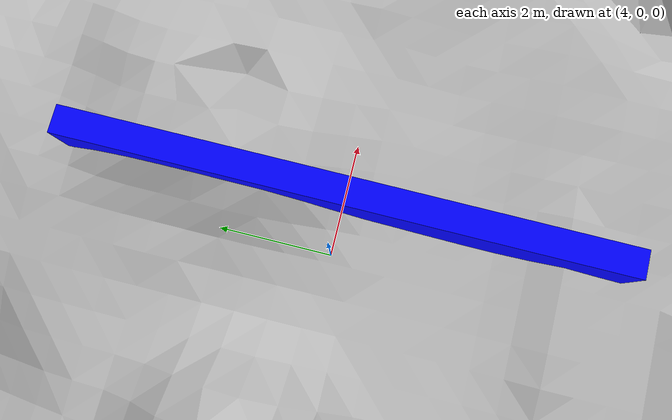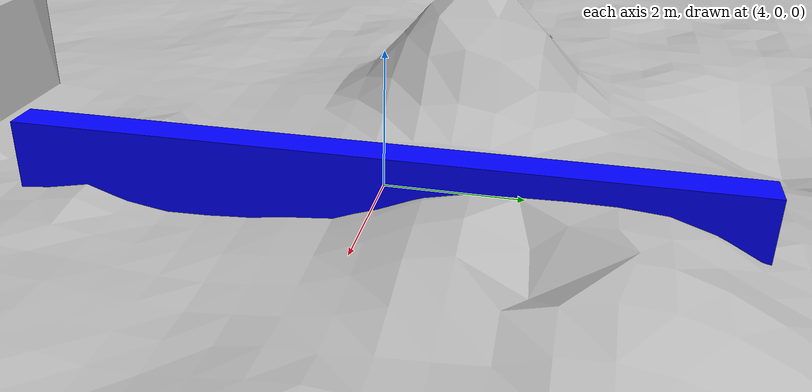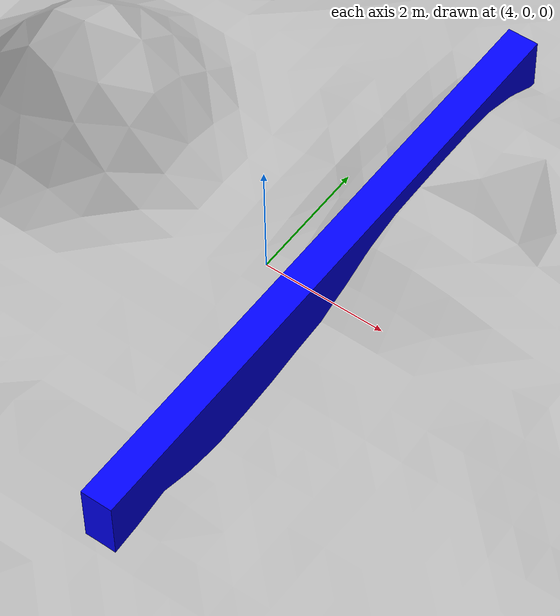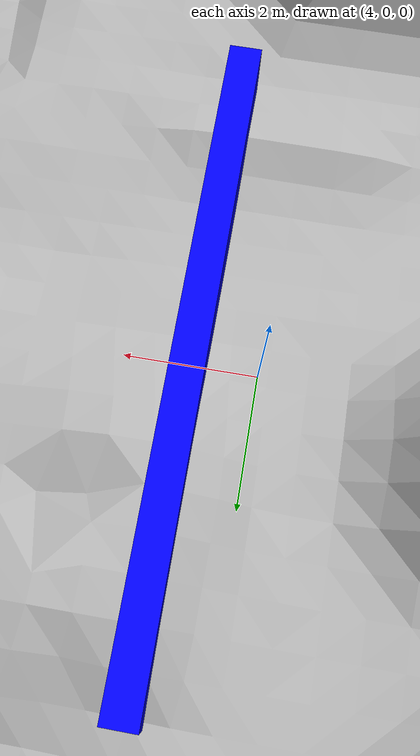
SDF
<sdf version="1.7">
  <world name="empty">
    <physics name="1ms" type="dart">
      <max_step_size>0.001</max_step_size>
      <real_time_factor>1.0</real_time_factor>
      <real_time_update_rate>1000</real_time_update_rate>
    </physics>

    <plugin
      filename="gz-sim-physics-system"
      name="gz::sim::systems::Physics">
    </plugin>
    <plugin
      filename="gz-sim-user-commands-system"
      name="gz::sim::systems::UserCommands">
    </plugin>
    <plugin
      filename="gz-sim-scene-broadcaster-system"
      name="gz::sim::systems::SceneBroadcaster">
    </plugin>
    <plugin
      filename="gz-sim-sensors-system"
      name="gz::sim::systems::Sensors">
      <render_engine>ogre2</render_engine>
    </plugin>
    <plugin
      filename="gz-sim-contact-system"
      name="gz::sim::systems::Contact">
    </plugin>

    <light type="directional" name="sun">
      <cast_shadows>true</cast_shadows>
      <pose>0 0 10 0 0 0</pose>
      <diffuse>0.8 0.8 0.8 1</diffuse>
      <specular>0.2 0.2 0.2 1</specular>
      <attenuation>
        <range>1000</range>
        <constant>0.9</constant>
        <linear>0.01</linear>
        <quadratic>0.001</quadratic>
      </attenuation>
      <direction>-0.5 0.1 -0.9</direction>
    </light>

	<include>
    <uri>file:///home/rob/mmtr_ws/src/mmtr_description/worlds/terrain</uri>
	  <pose>0 0 0 0 0 0</pose> <!-- Adjust Z or orientation if needed -->
	</include>

    <model name='wall'>
      <static>true</static>
      <pose>5 0 0 0 0 0</pose><!--pose
      relative to the world-->
      <link name='box'>
        <visual name='visual'>
          <geometry>
            <box>
              <size>0.5 10.0 2.0</size>
            </box>
          </geometry>
          <material>
            <ambient>0.0 0.0 1.0 1</ambient>
            <diffuse>0.0 0.0 1.0 1</diffuse>
            <specular>0.0 0.0 1.0 1</specular>
          </material>
        </visual>
        <collision name='collision'>
          <geometry>
            <box>
              <size>0.5 10.0 2.0</size>
            </box>
          </geometry>
        </collision>
      </link>
    </model>

  </world>

</sdf>

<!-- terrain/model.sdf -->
<sdf version="1.7">
  <model name="custom_ground">
    <static>true</static>
    <link name="link">
      <visual name="visual">
        <geometry>
          <mesh>
            <uri>file:///home/rob/mmtr_ws/src/mmtr_description/worlds/terrain/meshes/map.dae</uri>
          </mesh>
        </geometry>
      </visual>

      <collision name="collision">
        <geometry>
          <mesh>
            <uri>file:///home/rob/mmtr_ws/src/mmtr_description/worlds/terrain/meshes/map.dae</uri>
          </mesh>
        </geometry>
      </collision>
    </link>
  </model>
</sdf>
